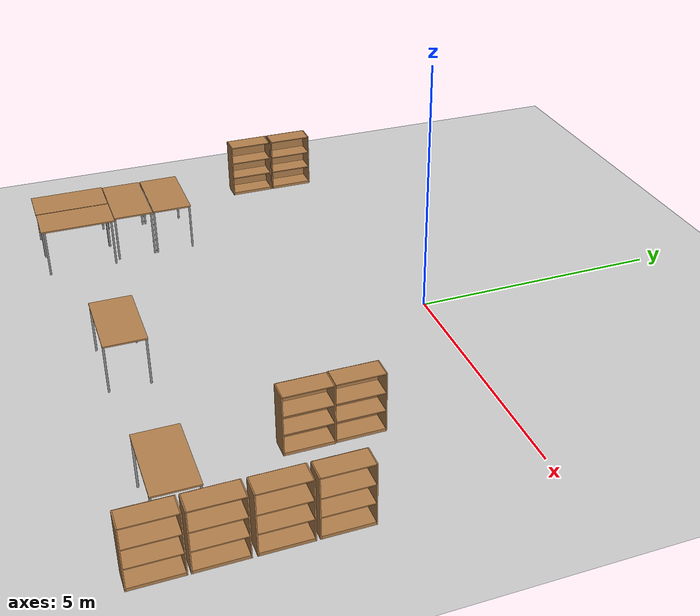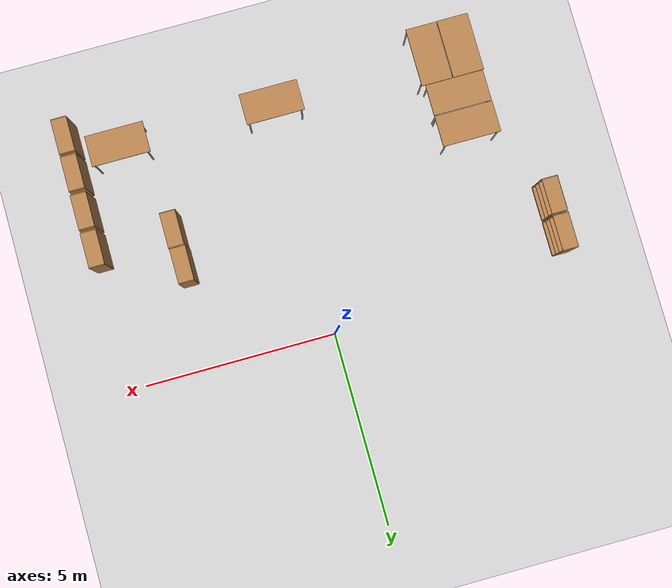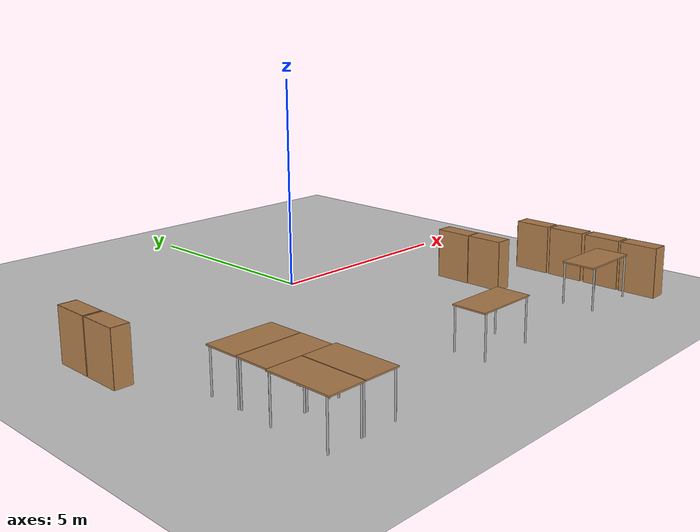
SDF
<sdf version="1.4">
 <world name="office">
  <model name="ground_plane">
   <static>1</static>
   <link name="link">
    <collision name="collision">
     <geometry><plane><normal>0 0 1</normal><size>100 100</size></plane></geometry>
     <surface><friction><ode><mu>100</mu><mu2>50</mu2></ode></friction></surface>
    </collision>
    <visual name="visual">
     <cast_shadows>0</cast_shadows>
     <geometry><plane><normal>0 0 1</normal><size>100 100</size></plane></geometry>
     <material>
      <script><uri>file://media/materials/scripts/gazebo.material</uri><name>Gazebo/Grey</name></script>
     </material>
    </visual>
    <velocity_decay><linear>0</linear><angular>0</angular></velocity_decay>
   </link>
  </model>
  <model name="bookshelf">
   <static>1</static>
   <link name="link">
    <inertial><mass>1</mass></inertial>
    <collision name="back">
     <pose>0 0.005 0.6 0 -0 0</pose>
     <geometry><box><size>0.9 0.01 1.2</size></box></geometry>
    </collision>
    <visual name="visual1">
     <pose>0 0.005 0.6 0 -0 0</pose>
     <geometry><box><size>0.9 0.01 1.2</size></box></geometry>
     <material>
      <script><uri>file://media/materials/scripts/gazebo.material</uri><name>Gazebo/Wood</name></script>
     </material>
    </visual>
    <collision name="left_side">
     <pose>0.45 -0.195 0.6 0 -0 0</pose>
     <geometry><box><size>0.02 0.4 1.2</size></box></geometry>
    </collision>
    <visual name="visual2">
     <pose>0.45 -0.195 0.6 0 -0 0</pose>
     <geometry><box><size>0.02 0.4 1.2</size></box></geometry>
     <material>
      <script><uri>file://media/materials/scripts/gazebo.material</uri><name>Gazebo/Wood</name></script>
     </material>
    </visual>
    <collision name="right_side">
     <pose>-0.45 -0.195 0.6 0 -0 0</pose>
     <geometry><box><size>0.02 0.4 1.2</size></box></geometry>
    </collision>
    <visual name="visual3">
     <pose>-0.45 -0.195 0.6 0 -0 0</pose>
     <geometry><box><size>0.02 0.4 1.2</size></box></geometry>
     <material>
      <script><uri>file://media/materials/scripts/gazebo.material</uri><name>Gazebo/Wood</name></script>
     </material>
    </visual>
    <collision name="bottom">
     <pose>0 -0.195 0.03 0 -0 0</pose>
     <geometry><box><size>0.88 0.4 0.06</size></box></geometry>
    </collision>
    <visual name="visual4">
     <pose>0 -0.195 0.03 0 -0 0</pose>
     <geometry><box><size>0.88 0.4 0.06</size></box></geometry>
     <material>
      <script><uri>file://media/materials/scripts/gazebo.material</uri><name>Gazebo/Wood</name></script>
     </material>
    </visual>
    <collision name="top">
     <pose>0 -0.195 1.19 0 -0 0</pose>
     <geometry><box><size>0.88 0.4 0.02</size></box></geometry>
    </collision>
    <visual name="visual5">
     <pose>0 -0.195 1.19 0 -0 0</pose>
     <geometry><box><size>0.88 0.4 0.02</size></box></geometry>
     <material>
      <script><uri>file://media/materials/scripts/gazebo.material</uri><name>Gazebo/Wood</name></script>
     </material>
    </visual>
    <collision name="low_shelf">
     <pose>0 -0.195 0.43 0 -0 0</pose>
     <geometry><box><size>0.88 0.4 0.02</size></box></geometry>
    </collision>
    <visual name="visual6">
     <pose>0 -0.195 0.43 0 -0 0</pose>
     <geometry><box><size>0.88 0.4 0.02</size></box></geometry>
     <material>
      <script><uri>file://media/materials/scripts/gazebo.material</uri><name>Gazebo/Wood</name></script>
     </material>
    </visual>
    <collision name="high_shelf">
     <pose>0 -0.195 0.8 0 -0 0</pose>
     <geometry><box><size>0.88 0.4 0.02</size></box></geometry>
    </collision>
    <visual name="visual7">
     <pose>0 -0.195 0.8 0 -0 0</pose>
     <geometry><box><size>0.88 0.4 0.02</size></box></geometry>
     <material>
      <script><uri>file://media/materials/scripts/gazebo.material</uri><name>Gazebo/Wood</name></script>
     </material>
    </visual>
    <velocity_decay><linear>0</linear><angular>0</angular></velocity_decay>
   </link>
   <pose>-6.31442 -0.893722 0 0 -0 1.5708</pose>
  </model>
  <model name="bookshelf_0">
   <static>1</static>
   <link name="link">
    <inertial><mass>1</mass></inertial>
    <collision name="back">
     <pose>0 0.005 0.6 0 -0 0</pose>
     <geometry><box><size>0.9 0.01 1.2</size></box></geometry>
    </collision>
    <visual name="visual1">
     <pose>0 0.005 0.6 0 -0 0</pose>
     <geometry><box><size>0.9 0.01 1.2</size></box></geometry>
     <material>
      <script><uri>file://media/materials/scripts/gazebo.material</uri><name>Gazebo/Wood</name></script>
     </material>
    </visual>
    <collision name="left_side">
     <pose>0.45 -0.195 0.6 0 -0 0</pose>
     <geometry><box><size>0.02 0.4 1.2</size></box></geometry>
    </collision>
    <visual name="visual2">
     <pose>0.45 -0.195 0.6 0 -0 0</pose>
     <geometry><box><size>0.02 0.4 1.2</size></box></geometry>
     <material>
      <script><uri>file://media/materials/scripts/gazebo.material</uri><name>Gazebo/Wood</name></script>
     </material>
    </visual>
    <collision name="right_side">
     <pose>-0.45 -0.195 0.6 0 -0 0</pose>
     <geometry><box><size>0.02 0.4 1.2</size></box></geometry>
    </collision>
    <visual name="visual3">
     <pose>-0.45 -0.195 0.6 0 -0 0</pose>
     <geometry><box><size>0.02 0.4 1.2</size></box></geometry>
     <material>
      <script><uri>file://media/materials/scripts/gazebo.material</uri><name>Gazebo/Wood</name></script>
     </material>
    </visual>
    <collision name="bottom">
     <pose>0 -0.195 0.03 0 -0 0</pose>
     <geometry><box><size>0.88 0.4 0.06</size></box></geometry>
    </collision>
    <visual name="visual4">
     <pose>0 -0.195 0.03 0 -0 0</pose>
     <geometry><box><size>0.88 0.4 0.06</size></box></geometry>
     <material>
      <script><uri>file://media/materials/scripts/gazebo.material</uri><name>Gazebo/Wood</name></script>
     </material>
    </visual>
    <collision name="top">
     <pose>0 -0.195 1.19 0 -0 0</pose>
     <geometry><box><size>0.88 0.4 0.02</size></box></geometry>
    </collision>
    <visual name="visual5">
     <pose>0 -0.195 1.19 0 -0 0</pose>
     <geometry><box><size>0.88 0.4 0.02</size></box></geometry>
     <material>
      <script><uri>file://media/materials/scripts/gazebo.material</uri><name>Gazebo/Wood</name></script>
     </material>
    </visual>
    <collision name="low_shelf">
     <pose>0 -0.195 0.43 0 -0 0</pose>
     <geometry><box><size>0.88 0.4 0.02</size></box></geometry>
    </collision>
    <visual name="visual6">
     <pose>0 -0.195 0.43 0 -0 0</pose>
     <geometry><box><size>0.88 0.4 0.02</size></box></geometry>
     <material>
      <script><uri>file://media/materials/scripts/gazebo.material</uri><name>Gazebo/Wood</name></script>
     </material>
    </visual>
    <collision name="high_shelf">
     <pose>0 -0.195 0.8 0 -0 0</pose>
     <geometry><box><size>0.88 0.4 0.02</size></box></geometry>
    </collision>
    <visual name="visual7">
     <pose>0 -0.195 0.8 0 -0 0</pose>
     <geometry><box><size>0.88 0.4 0.02</size></box></geometry>
     <material>
      <script><uri>file://media/materials/scripts/gazebo.material</uri><name>Gazebo/Wood</name></script>
     </material>
    </visual>
    <velocity_decay><linear>0</linear><angular>0</angular></velocity_decay>
   </link>
   <pose>-6.31523 -1.83923 0 0 -0 1.5708</pose>
  </model>
  <model name="bookshelf_3">
   <static>1</static>
   <link name="link">
    <inertial><mass>1</mass></inertial>
    <collision name="back">
     <pose>0 0.005 0.6 0 -0 0</pose>
     <geometry><box><size>0.9 0.01 1.2</size></box></geometry>
    </collision>
    <visual name="visual1">
     <pose>0 0.005 0.6 0 -0 0</pose>
     <geometry><box><size>0.9 0.01 1.2</size></box></geometry>
     <material>
      <script><uri>file://media/materials/scripts/gazebo.material</uri><name>Gazebo/Wood</name></script>
     </material>
    </visual>
    <collision name="left_side">
     <pose>0.45 -0.195 0.6 0 -0 0</pose>
     <geometry><box><size>0.02 0.4 1.2</size></box></geometry>
    </collision>
    <visual name="visual2">
     <pose>0.45 -0.195 0.6 0 -0 0</pose>
     <geometry><box><size>0.02 0.4 1.2</size></box></geometry>
     <material>
      <script><uri>file://media/materials/scripts/gazebo.material</uri><name>Gazebo/Wood</name></script>
     </material>
    </visual>
    <collision name="right_side">
     <pose>-0.45 -0.195 0.6 0 -0 0</pose>
     <geometry><box><size>0.02 0.4 1.2</size></box></geometry>
    </collision>
    <visual name="visual3">
     <pose>-0.45 -0.195 0.6 0 -0 0</pose>
     <geometry><box><size>0.02 0.4 1.2</size></box></geometry>
     <material>
      <script><uri>file://media/materials/scripts/gazebo.material</uri><name>Gazebo/Wood</name></script>
     </material>
    </visual>
    <collision name="bottom">
     <pose>0 -0.195 0.03 0 -0 0</pose>
     <geometry><box><size>0.88 0.4 0.06</size></box></geometry>
    </collision>
    <visual name="visual4">
     <pose>0 -0.195 0.03 0 -0 0</pose>
     <geometry><box><size>0.88 0.4 0.06</size></box></geometry>
     <material>
      <script><uri>file://media/materials/scripts/gazebo.material</uri><name>Gazebo/Wood</name></script>
     </material>
    </visual>
    <collision name="top">
     <pose>0 -0.195 1.19 0 -0 0</pose>
     <geometry><box><size>0.88 0.4 0.02</size></box></geometry>
    </collision>
    <visual name="visual5">
     <pose>0 -0.195 1.19 0 -0 0</pose>
     <geometry><box><size>0.88 0.4 0.02</size></box></geometry>
     <material>
      <script><uri>file://media/materials/scripts/gazebo.material</uri><name>Gazebo/Wood</name></script>
     </material>
    </visual>
    <collision name="low_shelf">
     <pose>0 -0.195 0.43 0 -0 0</pose>
     <geometry><box><size>0.88 0.4 0.02</size></box></geometry>
    </collision>
    <visual name="visual6">
     <pose>0 -0.195 0.43 0 -0 0</pose>
     <geometry><box><size>0.88 0.4 0.02</size></box></geometry>
     <material>
      <script><uri>file://media/materials/scripts/gazebo.material</uri><name>Gazebo/Wood</name></script>
     </material>
    </visual>
    <collision name="high_shelf">
     <pose>0 -0.195 0.8 0 -0 0</pose>
     <geometry><box><size>0.88 0.4 0.02</size></box></geometry>
    </collision>
    <visual name="visual7">
     <pose>0 -0.195 0.8 0 -0 0</pose>
     <geometry><box><size>0.88 0.4 0.02</size></box></geometry>
     <material>
      <script><uri>file://media/materials/scripts/gazebo.material</uri><name>Gazebo/Wood</name></script>
     </material>
    </visual>
    <velocity_decay><linear>0</linear><angular>0</angular></velocity_decay>
   </link>
   <pose>3.02832 -3.53636 0 0 -0 1.5708</pose>
  </model>
  <model name="bookshelf_4">
   <static>1</static>
   <link name="link">
    <inertial><mass>1</mass></inertial>
    <collision name="back">
     <pose>0 0.005 0.6 0 -0 0</pose>
     <geometry><box><size>0.9 0.01 1.2</size></box></geometry>
    </collision>
    <visual name="visual1">
     <pose>0 0.005 0.6 0 -0 0</pose>
     <geometry><box><size>0.9 0.01 1.2</size></box></geometry>
     <material>
      <script><uri>file://media/materials/scripts/gazebo.material</uri><name>Gazebo/Wood</name></script>
     </material>
    </visual>
    <collision name="left_side">
     <pose>0.45 -0.195 0.6 0 -0 0</pose>
     <geometry><box><size>0.02 0.4 1.2</size></box></geometry>
    </collision>
    <visual name="visual2">
     <pose>0.45 -0.195 0.6 0 -0 0</pose>
     <geometry><box><size>0.02 0.4 1.2</size></box></geometry>
     <material>
      <script><uri>file://media/materials/scripts/gazebo.material</uri><name>Gazebo/Wood</name></script>
     </material>
    </visual>
    <collision name="right_side">
     <pose>-0.45 -0.195 0.6 0 -0 0</pose>
     <geometry><box><size>0.02 0.4 1.2</size></box></geometry>
    </collision>
    <visual name="visual3">
     <pose>-0.45 -0.195 0.6 0 -0 0</pose>
     <geometry><box><size>0.02 0.4 1.2</size></box></geometry>
     <material>
      <script><uri>file://media/materials/scripts/gazebo.material</uri><name>Gazebo/Wood</name></script>
     </material>
    </visual>
    <collision name="bottom">
     <pose>0 -0.195 0.03 0 -0 0</pose>
     <geometry><box><size>0.88 0.4 0.06</size></box></geometry>
    </collision>
    <visual name="visual4">
     <pose>0 -0.195 0.03 0 -0 0</pose>
     <geometry><box><size>0.88 0.4 0.06</size></box></geometry>
     <material>
      <script><uri>file://media/materials/scripts/gazebo.material</uri><name>Gazebo/Wood</name></script>
     </material>
    </visual>
    <collision name="top">
     <pose>0 -0.195 1.19 0 -0 0</pose>
     <geometry><box><size>0.88 0.4 0.02</size></box></geometry>
    </collision>
    <visual name="visual5">
     <pose>0 -0.195 1.19 0 -0 0</pose>
     <geometry><box><size>0.88 0.4 0.02</size></box></geometry>
     <material>
      <script><uri>file://media/materials/scripts/gazebo.material</uri><name>Gazebo/Wood</name></script>
     </material>
    </visual>
    <collision name="low_shelf">
     <pose>0 -0.195 0.43 0 -0 0</pose>
     <geometry><box><size>0.88 0.4 0.02</size></box></geometry>
    </collision>
    <visual name="visual6">
     <pose>0 -0.195 0.43 0 -0 0</pose>
     <geometry><box><size>0.88 0.4 0.02</size></box></geometry>
     <material>
      <script><uri>file://media/materials/scripts/gazebo.material</uri><name>Gazebo/Wood</name></script>
     </material>
    </visual>
    <collision name="high_shelf">
     <pose>0 -0.195 0.8 0 -0 0</pose>
     <geometry><box><size>0.88 0.4 0.02</size></box></geometry>
    </collision>
    <visual name="visual7">
     <pose>0 -0.195 0.8 0 -0 0</pose>
     <geometry><box><size>0.88 0.4 0.02</size></box></geometry>
     <material>
      <script><uri>file://media/materials/scripts/gazebo.material</uri><name>Gazebo/Wood</name></script>
     </material>
    </visual>
    <velocity_decay><linear>0</linear><angular>0</angular></velocity_decay>
   </link>
   <pose>3.01417 -2.62352 0 0 -0 1.5708</pose>
  </model>
  <model name="bookshelf_15">
   <static>1</static>
   <link name="link">
    <inertial><mass>1</mass></inertial>
    <collision name="back">
     <pose>0 0.005 0.6 0 -0 0</pose>
     <geometry><box><size>0.9 0.01 1.2</size></box></geometry>
    </collision>
    <visual name="visual1">
     <pose>0 0.005 0.6 0 -0 0</pose>
     <geometry><box><size>0.9 0.01 1.2</size></box></geometry>
     <material>
      <script><uri>file://media/materials/scripts/gazebo.material</uri><name>Gazebo/Wood</name></script>
     </material>
    </visual>
    <collision name="left_side">
     <pose>0.45 -0.195 0.6 0 -0 0</pose>
     <geometry><box><size>0.02 0.4 1.2</size></box></geometry>
    </collision>
    <visual name="visual2">
     <pose>0.45 -0.195 0.6 0 -0 0</pose>
     <geometry><box><size>0.02 0.4 1.2</size></box></geometry>
     <material>
      <script><uri>file://media/materials/scripts/gazebo.material</uri><name>Gazebo/Wood</name></script>
     </material>
    </visual>
    <collision name="right_side">
     <pose>-0.45 -0.195 0.6 0 -0 0</pose>
     <geometry><box><size>0.02 0.4 1.2</size></box></geometry>
    </collision>
    <visual name="visual3">
     <pose>-0.45 -0.195 0.6 0 -0 0</pose>
     <geometry><box><size>0.02 0.4 1.2</size></box></geometry>
     <material>
      <script><uri>file://media/materials/scripts/gazebo.material</uri><name>Gazebo/Wood</name></script>
     </material>
    </visual>
    <collision name="bottom">
     <pose>0 -0.195 0.03 0 -0 0</pose>
     <geometry><box><size>0.88 0.4 0.06</size></box></geometry>
    </collision>
    <visual name="visual4">
     <pose>0 -0.195 0.03 0 -0 0</pose>
     <geometry><box><size>0.88 0.4 0.06</size></box></geometry>
     <material>
      <script><uri>file://media/materials/scripts/gazebo.material</uri><name>Gazebo/Wood</name></script>
     </material>
    </visual>
    <collision name="top">
     <pose>0 -0.195 1.19 0 -0 0</pose>
     <geometry><box><size>0.88 0.4 0.02</size></box></geometry>
    </collision>
    <visual name="visual5">
     <pose>0 -0.195 1.19 0 -0 0</pose>
     <geometry><box><size>0.88 0.4 0.02</size></box></geometry>
     <material>
      <script><uri>file://media/materials/scripts/gazebo.material</uri><name>Gazebo/Wood</name></script>
     </material>
    </visual>
    <collision name="low_shelf">
     <pose>0 -0.195 0.43 0 -0 0</pose>
     <geometry><box><size>0.88 0.4 0.02</size></box></geometry>
    </collision>
    <visual name="visual6">
     <pose>0 -0.195 0.43 0 -0 0</pose>
     <geometry><box><size>0.88 0.4 0.02</size></box></geometry>
     <material>
      <script><uri>file://media/materials/scripts/gazebo.material</uri><name>Gazebo/Wood</name></script>
     </material>
    </visual>
    <collision name="high_shelf">
     <pose>0 -0.195 0.8 0 -0 0</pose>
     <geometry><box><size>0.88 0.4 0.02</size></box></geometry>
    </collision>
    <visual name="visual7">
     <pose>0 -0.195 0.8 0 -0 0</pose>
     <geometry><box><size>0.88 0.4 0.02</size></box></geometry>
     <material>
      <script><uri>file://media/materials/scripts/gazebo.material</uri><name>Gazebo/Wood</name></script>
     </material>
    </visual>
    <velocity_decay><linear>0</linear><angular>0</angular></velocity_decay>
   </link>
   <pose>5.03641 -3.58343 0 0 -0 1.5708</pose>
  </model>
  <model name="bookshelf_16">
   <static>1</static>
   <link name="link">
    <inertial><mass>1</mass></inertial>
    <collision name="back">
     <pose>0 0.005 0.6 0 -0 0</pose>
     <geometry><box><size>0.9 0.01 1.2</size></box></geometry>
    </collision>
    <visual name="visual1">
     <pose>0 0.005 0.6 0 -0 0</pose>
     <geometry><box><size>0.9 0.01 1.2</size></box></geometry>
     <material>
      <script><uri>file://media/materials/scripts/gazebo.material</uri><name>Gazebo/Wood</name></script>
     </material>
    </visual>
    <collision name="left_side">
     <pose>0.45 -0.195 0.6 0 -0 0</pose>
     <geometry><box><size>0.02 0.4 1.2</size></box></geometry>
    </collision>
    <visual name="visual2">
     <pose>0.45 -0.195 0.6 0 -0 0</pose>
     <geometry><box><size>0.02 0.4 1.2</size></box></geometry>
     <material>
      <script><uri>file://media/materials/scripts/gazebo.material</uri><name>Gazebo/Wood</name></script>
     </material>
    </visual>
    <collision name="right_side">
     <pose>-0.45 -0.195 0.6 0 -0 0</pose>
     <geometry><box><size>0.02 0.4 1.2</size></box></geometry>
    </collision>
    <visual name="visual3">
     <pose>-0.45 -0.195 0.6 0 -0 0</pose>
     <geometry><box><size>0.02 0.4 1.2</size></box></geometry>
     <material>
      <script><uri>file://media/materials/scripts/gazebo.material</uri><name>Gazebo/Wood</name></script>
     </material>
    </visual>
    <collision name="bottom">
     <pose>0 -0.195 0.03 0 -0 0</pose>
     <geometry><box><size>0.88 0.4 0.06</size></box></geometry>
    </collision>
    <visual name="visual4">
     <pose>0 -0.195 0.03 0 -0 0</pose>
     <geometry><box><size>0.88 0.4 0.06</size></box></geometry>
     <material>
      <script><uri>file://media/materials/scripts/gazebo.material</uri><name>Gazebo/Wood</name></script>
     </material>
    </visual>
    <collision name="top">
     <pose>0 -0.195 1.19 0 -0 0</pose>
     <geometry><box><size>0.88 0.4 0.02</size></box></geometry>
    </collision>
    <visual name="visual5">
     <pose>0 -0.195 1.19 0 -0 0</pose>
     <geometry><box><size>0.88 0.4 0.02</size></box></geometry>
     <material>
      <script><uri>file://media/materials/scripts/gazebo.material</uri><name>Gazebo/Wood</name></script>
     </material>
    </visual>
    <collision name="low_shelf">
     <pose>0 -0.195 0.43 0 -0 0</pose>
     <geometry><box><size>0.88 0.4 0.02</size></box></geometry>
    </collision>
    <visual name="visual6">
     <pose>0 -0.195 0.43 0 -0 0</pose>
     <geometry><box><size>0.88 0.4 0.02</size></box></geometry>
     <material>
      <script><uri>file://media/materials/scripts/gazebo.material</uri><name>Gazebo/Wood</name></script>
     </material>
    </visual>
    <collision name="high_shelf">
     <pose>0 -0.195 0.8 0 -0 0</pose>
     <geometry><box><size>0.88 0.4 0.02</size></box></geometry>
    </collision>
    <visual name="visual7">
     <pose>0 -0.195 0.8 0 -0 0</pose>
     <geometry><box><size>0.88 0.4 0.02</size></box></geometry>
     <material>
      <script><uri>file://media/materials/scripts/gazebo.material</uri><name>Gazebo/Wood</name></script>
     </material>
    </visual>
    <velocity_decay><linear>0</linear><angular>0</angular></velocity_decay>
   </link>
   <pose>5.04001 -4.56031 0 0 -0 1.5708</pose>
  </model>
  <model name="bookshelf_17">
   <static>1</static>
   <link name="link">
    <inertial><mass>1</mass></inertial>
    <collision name="back">
     <pose>0 0.005 0.6 0 -0 0</pose>
     <geometry><box><size>0.9 0.01 1.2</size></box></geometry>
    </collision>
    <visual name="visual1">
     <pose>0 0.005 0.6 0 -0 0</pose>
     <geometry><box><size>0.9 0.01 1.2</size></box></geometry>
     <material>
      <script><uri>file://media/materials/scripts/gazebo.material</uri><name>Gazebo/Wood</name></script>
     </material>
    </visual>
    <collision name="left_side">
     <pose>0.45 -0.195 0.6 0 -0 0</pose>
     <geometry><box><size>0.02 0.4 1.2</size></box></geometry>
    </collision>
    <visual name="visual2">
     <pose>0.45 -0.195 0.6 0 -0 0</pose>
     <geometry><box><size>0.02 0.4 1.2</size></box></geometry>
     <material>
      <script><uri>file://media/materials/scripts/gazebo.material</uri><name>Gazebo/Wood</name></script>
     </material>
    </visual>
    <collision name="right_side">
     <pose>-0.45 -0.195 0.6 0 -0 0</pose>
     <geometry><box><size>0.02 0.4 1.2</size></box></geometry>
    </collision>
    <visual name="visual3">
     <pose>-0.45 -0.195 0.6 0 -0 0</pose>
     <geometry><box><size>0.02 0.4 1.2</size></box></geometry>
     <material>
      <script><uri>file://media/materials/scripts/gazebo.material</uri><name>Gazebo/Wood</name></script>
     </material>
    </visual>
    <collision name="bottom">
     <pose>0 -0.195 0.03 0 -0 0</pose>
     <geometry><box><size>0.88 0.4 0.06</size></box></geometry>
    </collision>
    <visual name="visual4">
     <pose>0 -0.195 0.03 0 -0 0</pose>
     <geometry><box><size>0.88 0.4 0.06</size></box></geometry>
     <material>
      <script><uri>file://media/materials/scripts/gazebo.material</uri><name>Gazebo/Wood</name></script>
     </material>
    </visual>
    <collision name="top">
     <pose>0 -0.195 1.19 0 -0 0</pose>
     <geometry><box><size>0.88 0.4 0.02</size></box></geometry>
    </collision>
    <visual name="visual5">
     <pose>0 -0.195 1.19 0 -0 0</pose>
     <geometry><box><size>0.88 0.4 0.02</size></box></geometry>
     <material>
      <script><uri>file://media/materials/scripts/gazebo.material</uri><name>Gazebo/Wood</name></script>
     </material>
    </visual>
    <collision name="low_shelf">
     <pose>0 -0.195 0.43 0 -0 0</pose>
     <geometry><box><size>0.88 0.4 0.02</size></box></geometry>
    </collision>
    <visual name="visual6">
     <pose>0 -0.195 0.43 0 -0 0</pose>
     <geometry><box><size>0.88 0.4 0.02</size></box></geometry>
     <material>
      <script><uri>file://media/materials/scripts/gazebo.material</uri><name>Gazebo/Wood</name></script>
     </material>
    </visual>
    <collision name="high_shelf">
     <pose>0 -0.195 0.8 0 -0 0</pose>
     <geometry><box><size>0.88 0.4 0.02</size></box></geometry>
    </collision>
    <visual name="visual7">
     <pose>0 -0.195 0.8 0 -0 0</pose>
     <geometry><box><size>0.88 0.4 0.02</size></box></geometry>
     <material>
      <script><uri>file://media/materials/scripts/gazebo.material</uri><name>Gazebo/Wood</name></script>
     </material>
    </visual>
    <velocity_decay><linear>0</linear><angular>0</angular></velocity_decay>
   </link>
   <pose>5.03842 -5.55621 0 0 -0 1.5708</pose>
  </model>
  <model name="bookshelf_18">
   <static>1</static>
   <link name="link">
    <inertial><mass>1</mass></inertial>
    <collision name="back">
     <pose>0 0.005 0.6 0 -0 0</pose>
     <geometry><box><size>0.9 0.01 1.2</size></box></geometry>
    </collision>
    <visual name="visual1">
     <pose>0 0.005 0.6 0 -0 0</pose>
     <geometry><box><size>0.9 0.01 1.2</size></box></geometry>
     <material>
      <script><uri>file://media/materials/scripts/gazebo.material</uri><name>Gazebo/Wood</name></script>
     </material>
    </visual>
    <collision name="left_side">
     <pose>0.45 -0.195 0.6 0 -0 0</pose>
     <geometry><box><size>0.02 0.4 1.2</size></box></geometry>
    </collision>
    <visual name="visual2">
     <pose>0.45 -0.195 0.6 0 -0 0</pose>
     <geometry><box><size>0.02 0.4 1.2</size></box></geometry>
     <material>
      <script><uri>file://media/materials/scripts/gazebo.material</uri><name>Gazebo/Wood</name></script>
     </material>
    </visual>
    <collision name="right_side">
     <pose>-0.45 -0.195 0.6 0 -0 0</pose>
     <geometry><box><size>0.02 0.4 1.2</size></box></geometry>
    </collision>
    <visual name="visual3">
     <pose>-0.45 -0.195 0.6 0 -0 0</pose>
     <geometry><box><size>0.02 0.4 1.2</size></box></geometry>
     <material>
      <script><uri>file://media/materials/scripts/gazebo.material</uri><name>Gazebo/Wood</name></script>
     </material>
    </visual>
    <collision name="bottom">
     <pose>0 -0.195 0.03 0 -0 0</pose>
     <geometry><box><size>0.88 0.4 0.06</size></box></geometry>
    </collision>
    <visual name="visual4">
     <pose>0 -0.195 0.03 0 -0 0</pose>
     <geometry><box><size>0.88 0.4 0.06</size></box></geometry>
     <material>
      <script><uri>file://media/materials/scripts/gazebo.material</uri><name>Gazebo/Wood</name></script>
     </material>
    </visual>
    <collision name="top">
     <pose>0 -0.195 1.19 0 -0 0</pose>
     <geometry><box><size>0.88 0.4 0.02</size></box></geometry>
    </collision>
    <visual name="visual5">
     <pose>0 -0.195 1.19 0 -0 0</pose>
     <geometry><box><size>0.88 0.4 0.02</size></box></geometry>
     <material>
      <script><uri>file://media/materials/scripts/gazebo.material</uri><name>Gazebo/Wood</name></script>
     </material>
    </visual>
    <collision name="low_shelf">
     <pose>0 -0.195 0.43 0 -0 0</pose>
     <geometry><box><size>0.88 0.4 0.02</size></box></geometry>
    </collision>
    <visual name="visual6">
     <pose>0 -0.195 0.43 0 -0 0</pose>
     <geometry><box><size>0.88 0.4 0.02</size></box></geometry>
     <material>
      <script><uri>file://media/materials/scripts/gazebo.material</uri><name>Gazebo/Wood</name></script>
     </material>
    </visual>
    <collision name="high_shelf">
     <pose>0 -0.195 0.8 0 -0 0</pose>
     <geometry><box><size>0.88 0.4 0.02</size></box></geometry>
    </collision>
    <visual name="visual7">
     <pose>0 -0.195 0.8 0 -0 0</pose>
     <geometry><box><size>0.88 0.4 0.02</size></box></geometry>
     <material>
      <script><uri>file://media/materials/scripts/gazebo.material</uri><name>Gazebo/Wood</name></script>
     </material>
    </visual>
    <velocity_decay><linear>0</linear><angular>0</angular></velocity_decay>
   </link>
   <pose>5.03802 -6.52345 0 0 -0 1.5708</pose>
  </model>
  <model name="table_6">
   <static>1</static>
   <link name="link">
    <collision name="surface">
     <pose>0 0 1 0 -0 0</pose>
     <geometry><box><size>1.5 0.8 0.03</size></box></geometry>
    </collision>
    <visual name="visual1">
     <pose>0 0 1 0 -0 0</pose>
     <geometry><box><size>1.5 0.8 0.03</size></box></geometry>
     <material>
      <script><uri>file://media/materials/scripts/gazebo.material</uri><name>Gazebo/Wood</name></script>
     </material>
    </visual>
    <collision name="front_left_leg">
     <pose>0.68 0.38 0.5 0 -0 0</pose>
     <geometry><cylinder><radius>0.02</radius><length>1</length></cylinder></geometry>
    </collision>
    <visual name="front_left_leg">
     <pose>0.68 0.38 0.5 0 -0 0</pose>
     <geometry><cylinder><radius>0.02</radius><length>1</length></cylinder></geometry>
     <material>
      <script><uri>file://media/materials/scripts/gazebo.material</uri><name>Gazebo/Grey</name></script>
     </material>
    </visual>
    <collision name="front_right_leg">
     <pose>0.68 -0.38 0.5 0 -0 0</pose>
     <geometry><cylinder><radius>0.02</radius><length>1</length></cylinder></geometry>
    </collision>
    <visual name="front_right_leg">
     <pose>0.68 -0.38 0.5 0 -0 0</pose>
     <geometry><cylinder><radius>0.02</radius><length>1</length></cylinder></geometry>
     <material>
      <script><uri>file://media/materials/scripts/gazebo.material</uri><name>Gazebo/Grey</name></script>
     </material>
    </visual>
    <collision name="back_right_leg">
     <pose>-0.68 -0.38 0.5 0 -0 0</pose>
     <geometry><cylinder><radius>0.02</radius><length>1</length></cylinder></geometry>
    </collision>
    <visual name="back_right_leg">
     <pose>-0.68 -0.38 0.5 0 -0 0</pose>
     <geometry><cylinder><radius>0.02</radius><length>1</length></cylinder></geometry>
     <material>
      <script><uri>file://media/materials/scripts/gazebo.material</uri><name>Gazebo/Grey</name></script>
     </material>
    </visual>
    <collision name="back_left_leg">
     <pose>-0.68 0.38 0.5 0 -0 0</pose>
     <geometry><cylinder><radius>0.02</radius><length>1</length></cylinder></geometry>
    </collision>
    <visual name="back_left_leg">
     <pose>-0.68 0.38 0.5 0 -0 0</pose>
     <geometry><cylinder><radius>0.02</radius><length>1</length></cylinder></geometry>
     <material>
      <script><uri>file://media/materials/scripts/gazebo.material</uri><name>Gazebo/Grey</name></script>
     </material>
    </visual>
    <velocity_decay><linear>0</linear><angular>0</angular></velocity_decay>
   </link>
   <pose>-4.14141 -6.13774 0 0 0 -1.5708</pose>
  </model>
  <model name="table_7">
   <static>1</static>
   <link name="link">
    <collision name="surface">
     <pose>0 0 1 0 -0 0</pose>
     <geometry><box><size>1.5 0.8 0.03</size></box></geometry>
    </collision>
    <visual name="visual1">
     <pose>0 0 1 0 -0 0</pose>
     <geometry><box><size>1.5 0.8 0.03</size></box></geometry>
     <material>
      <script><uri>file://media/materials/scripts/gazebo.material</uri><name>Gazebo/Wood</name></script>
     </material>
    </visual>
    <collision name="front_left_leg">
     <pose>0.68 0.38 0.5 0 -0 0</pose>
     <geometry><cylinder><radius>0.02</radius><length>1</length></cylinder></geometry>
    </collision>
    <visual name="front_left_leg">
     <pose>0.68 0.38 0.5 0 -0 0</pose>
     <geometry><cylinder><radius>0.02</radius><length>1</length></cylinder></geometry>
     <material>
      <script><uri>file://media/materials/scripts/gazebo.material</uri><name>Gazebo/Grey</name></script>
     </material>
    </visual>
    <collision name="front_right_leg">
     <pose>0.68 -0.38 0.5 0 -0 0</pose>
     <geometry><cylinder><radius>0.02</radius><length>1</length></cylinder></geometry>
    </collision>
    <visual name="front_right_leg">
     <pose>0.68 -0.38 0.5 0 -0 0</pose>
     <geometry><cylinder><radius>0.02</radius><length>1</length></cylinder></geometry>
     <material>
      <script><uri>file://media/materials/scripts/gazebo.material</uri><name>Gazebo/Grey</name></script>
     </material>
    </visual>
    <collision name="back_right_leg">
     <pose>-0.68 -0.38 0.5 0 -0 0</pose>
     <geometry><cylinder><radius>0.02</radius><length>1</length></cylinder></geometry>
    </collision>
    <visual name="back_right_leg">
     <pose>-0.68 -0.38 0.5 0 -0 0</pose>
     <geometry><cylinder><radius>0.02</radius><length>1</length></cylinder></geometry>
     <material>
      <script><uri>file://media/materials/scripts/gazebo.material</uri><name>Gazebo/Grey</name></script>
     </material>
    </visual>
    <collision name="back_left_leg">
     <pose>-0.68 0.38 0.5 0 -0 0</pose>
     <geometry><cylinder><radius>0.02</radius><length>1</length></cylinder></geometry>
    </collision>
    <visual name="back_left_leg">
     <pose>-0.68 0.38 0.5 0 -0 0</pose>
     <geometry><cylinder><radius>0.02</radius><length>1</length></cylinder></geometry>
     <material>
      <script><uri>file://media/materials/scripts/gazebo.material</uri><name>Gazebo/Grey</name></script>
     </material>
    </visual>
    <velocity_decay><linear>0</linear><angular>0</angular></velocity_decay>
   </link>
   <pose>-4.96215 -6.14322 0 0 0 -1.5708</pose>
  </model>
  <model name="table_8">
   <static>1</static>
   <link name="link">
    <collision name="surface">
     <pose>0 0 1 0 -0 0</pose>
     <geometry><box><size>1.5 0.8 0.03</size></box></geometry>
    </collision>
    <visual name="visual1">
     <pose>0 0 1 0 -0 0</pose>
     <geometry><box><size>1.5 0.8 0.03</size></box></geometry>
     <material>
      <script><uri>file://media/materials/scripts/gazebo.material</uri><name>Gazebo/Wood</name></script>
     </material>
    </visual>
    <collision name="front_left_leg">
     <pose>0.68 0.38 0.5 0 -0 0</pose>
     <geometry><cylinder><radius>0.02</radius><length>1</length></cylinder></geometry>
    </collision>
    <visual name="front_left_leg">
     <pose>0.68 0.38 0.5 0 -0 0</pose>
     <geometry><cylinder><radius>0.02</radius><length>1</length></cylinder></geometry>
     <material>
      <script><uri>file://media/materials/scripts/gazebo.material</uri><name>Gazebo/Grey</name></script>
     </material>
    </visual>
    <collision name="front_right_leg">
     <pose>0.68 -0.38 0.5 0 -0 0</pose>
     <geometry><cylinder><radius>0.02</radius><length>1</length></cylinder></geometry>
    </collision>
    <visual name="front_right_leg">
     <pose>0.68 -0.38 0.5 0 -0 0</pose>
     <geometry><cylinder><radius>0.02</radius><length>1</length></cylinder></geometry>
     <material>
      <script><uri>file://media/materials/scripts/gazebo.material</uri><name>Gazebo/Grey</name></script>
     </material>
    </visual>
    <collision name="back_right_leg">
     <pose>-0.68 -0.38 0.5 0 -0 0</pose>
     <geometry><cylinder><radius>0.02</radius><length>1</length></cylinder></geometry>
    </collision>
    <visual name="back_right_leg">
     <pose>-0.68 -0.38 0.5 0 -0 0</pose>
     <geometry><cylinder><radius>0.02</radius><length>1</length></cylinder></geometry>
     <material>
      <script><uri>file://media/materials/scripts/gazebo.material</uri><name>Gazebo/Grey</name></script>
     </material>
    </visual>
    <collision name="back_left_leg">
     <pose>-0.68 0.38 0.5 0 -0 0</pose>
     <geometry><cylinder><radius>0.02</radius><length>1</length></cylinder></geometry>
    </collision>
    <visual name="back_left_leg">
     <pose>-0.68 0.38 0.5 0 -0 0</pose>
     <geometry><cylinder><radius>0.02</radius><length>1</length></cylinder></geometry>
     <material>
      <script><uri>file://media/materials/scripts/gazebo.material</uri><name>Gazebo/Grey</name></script>
     </material>
    </visual>
    <velocity_decay><linear>0</linear><angular>0</angular></velocity_decay>
   </link>
   <pose>-4.58557 -4.15805 0 0 -0 0</pose>
  </model>
  <model name="table_9">
   <static>1</static>
   <link name="link">
    <collision name="surface">
     <pose>0 0 1 0 -0 0</pose>
     <geometry><box><size>1.5 0.8 0.03</size></box></geometry>
    </collision>
    <visual name="visual1">
     <pose>0 0 1 0 -0 0</pose>
     <geometry><box><size>1.5 0.8 0.03</size></box></geometry>
     <material>
      <script><uri>file://media/materials/scripts/gazebo.material</uri><name>Gazebo/Wood</name></script>
     </material>
    </visual>
    <collision name="front_left_leg">
     <pose>0.68 0.38 0.5 0 -0 0</pose>
     <geometry><cylinder><radius>0.02</radius><length>1</length></cylinder></geometry>
    </collision>
    <visual name="front_left_leg">
     <pose>0.68 0.38 0.5 0 -0 0</pose>
     <geometry><cylinder><radius>0.02</radius><length>1</length></cylinder></geometry>
     <material>
      <script><uri>file://media/materials/scripts/gazebo.material</uri><name>Gazebo/Grey</name></script>
     </material>
    </visual>
    <collision name="front_right_leg">
     <pose>0.68 -0.38 0.5 0 -0 0</pose>
     <geometry><cylinder><radius>0.02</radius><length>1</length></cylinder></geometry>
    </collision>
    <visual name="front_right_leg">
     <pose>0.68 -0.38 0.5 0 -0 0</pose>
     <geometry><cylinder><radius>0.02</radius><length>1</length></cylinder></geometry>
     <material>
      <script><uri>file://media/materials/scripts/gazebo.material</uri><name>Gazebo/Grey</name></script>
     </material>
    </visual>
    <collision name="back_right_leg">
     <pose>-0.68 -0.38 0.5 0 -0 0</pose>
     <geometry><cylinder><radius>0.02</radius><length>1</length></cylinder></geometry>
    </collision>
    <visual name="back_right_leg">
     <pose>-0.68 -0.38 0.5 0 -0 0</pose>
     <geometry><cylinder><radius>0.02</radius><length>1</length></cylinder></geometry>
     <material>
      <script><uri>file://media/materials/scripts/gazebo.material</uri><name>Gazebo/Grey</name></script>
     </material>
    </visual>
    <collision name="back_left_leg">
     <pose>-0.68 0.38 0.5 0 -0 0</pose>
     <geometry><cylinder><radius>0.02</radius><length>1</length></cylinder></geometry>
    </collision>
    <visual name="back_left_leg">
     <pose>-0.68 0.38 0.5 0 -0 0</pose>
     <geometry><cylinder><radius>0.02</radius><length>1</length></cylinder></geometry>
     <material>
      <script><uri>file://media/materials/scripts/gazebo.material</uri><name>Gazebo/Grey</name></script>
     </material>
    </visual>
    <velocity_decay><linear>0</linear><angular>0</angular></velocity_decay>
   </link>
   <pose>-4.57916 -4.98068 0 0 -0 0</pose>
  </model>
  <model name="table_10">
   <static>1</static>
   <link name="link">
    <collision name="surface">
     <pose>0 0 1 0 -0 0</pose>
     <geometry><box><size>1.5 0.8 0.03</size></box></geometry>
    </collision>
    <visual name="visual1">
     <pose>0 0 1 0 -0 0</pose>
     <geometry><box><size>1.5 0.8 0.03</size></box></geometry>
     <material>
      <script><uri>file://media/materials/scripts/gazebo.material</uri><name>Gazebo/Wood</name></script>
     </material>
    </visual>
    <collision name="front_left_leg">
     <pose>0.68 0.38 0.5 0 -0 0</pose>
     <geometry><cylinder><radius>0.02</radius><length>1</length></cylinder></geometry>
    </collision>
    <visual name="front_left_leg">
     <pose>0.68 0.38 0.5 0 -0 0</pose>
     <geometry><cylinder><radius>0.02</radius><length>1</length></cylinder></geometry>
     <material>
      <script><uri>file://media/materials/scripts/gazebo.material</uri><name>Gazebo/Grey</name></script>
     </material>
    </visual>
    <collision name="front_right_leg">
     <pose>0.68 -0.38 0.5 0 -0 0</pose>
     <geometry><cylinder><radius>0.02</radius><length>1</length></cylinder></geometry>
    </collision>
    <visual name="front_right_leg">
     <pose>0.68 -0.38 0.5 0 -0 0</pose>
     <geometry><cylinder><radius>0.02</radius><length>1</length></cylinder></geometry>
     <material>
      <script><uri>file://media/materials/scripts/gazebo.material</uri><name>Gazebo/Grey</name></script>
     </material>
    </visual>
    <collision name="back_right_leg">
     <pose>-0.68 -0.38 0.5 0 -0 0</pose>
     <geometry><cylinder><radius>0.02</radius><length>1</length></cylinder></geometry>
    </collision>
    <visual name="back_right_leg">
     <pose>-0.68 -0.38 0.5 0 -0 0</pose>
     <geometry><cylinder><radius>0.02</radius><length>1</length></cylinder></geometry>
     <material>
      <script><uri>file://media/materials/scripts/gazebo.material</uri><name>Gazebo/Grey</name></script>
     </material>
    </visual>
    <collision name="back_left_leg">
     <pose>-0.68 0.38 0.5 0 -0 0</pose>
     <geometry><cylinder><radius>0.02</radius><length>1</length></cylinder></geometry>
    </collision>
    <visual name="back_left_leg">
     <pose>-0.68 0.38 0.5 0 -0 0</pose>
     <geometry><cylinder><radius>0.02</radius><length>1</length></cylinder></geometry>
     <material>
      <script><uri>file://media/materials/scripts/gazebo.material</uri><name>Gazebo/Grey</name></script>
     </material>
    </visual>
    <velocity_decay><linear>0</linear><angular>0</angular></velocity_decay>
   </link>
   <pose>0 -6 0 0 -0 0</pose>
  </model>
  <model name="table_11">
   <static>1</static>
   <link name="link">
    <collision name="surface">
     <pose>0 0 1 0 -0 0</pose>
     <geometry><box><size>1.5 0.8 0.03</size></box></geometry>
    </collision>
    <visual name="visual1">
     <pose>0 0 1 0 -0 0</pose>
     <geometry><box><size>1.5 0.8 0.03</size></box></geometry>
     <material>
      <script><uri>file://media/materials/scripts/gazebo.material</uri><name>Gazebo/Wood</name></script>
     </material>
    </visual>
    <collision name="front_left_leg">
     <pose>0.68 0.38 0.5 0 -0 0</pose>
     <geometry><cylinder><radius>0.02</radius><length>1</length></cylinder></geometry>
    </collision>
    <visual name="front_left_leg">
     <pose>0.68 0.38 0.5 0 -0 0</pose>
     <geometry><cylinder><radius>0.02</radius><length>1</length></cylinder></geometry>
     <material>
      <script><uri>file://media/materials/scripts/gazebo.material</uri><name>Gazebo/Grey</name></script>
     </material>
    </visual>
    <collision name="front_right_leg">
     <pose>0.68 -0.38 0.5 0 -0 0</pose>
     <geometry><cylinder><radius>0.02</radius><length>1</length></cylinder></geometry>
    </collision>
    <visual name="front_right_leg">
     <pose>0.68 -0.38 0.5 0 -0 0</pose>
     <geometry><cylinder><radius>0.02</radius><length>1</length></cylinder></geometry>
     <material>
      <script><uri>file://media/materials/scripts/gazebo.material</uri><name>Gazebo/Grey</name></script>
     </material>
    </visual>
    <collision name="back_right_leg">
     <pose>-0.68 -0.38 0.5 0 -0 0</pose>
     <geometry><cylinder><radius>0.02</radius><length>1</length></cylinder></geometry>
    </collision>
    <visual name="back_right_leg">
     <pose>-0.68 -0.38 0.5 0 -0 0</pose>
     <geometry><cylinder><radius>0.02</radius><length>1</length></cylinder></geometry>
     <material>
      <script><uri>file://media/materials/scripts/gazebo.material</uri><name>Gazebo/Grey</name></script>
     </material>
    </visual>
    <collision name="back_left_leg">
     <pose>-0.68 0.38 0.5 0 -0 0</pose>
     <geometry><cylinder><radius>0.02</radius><length>1</length></cylinder></geometry>
    </collision>
    <visual name="back_left_leg">
     <pose>-0.68 0.38 0.5 0 -0 0</pose>
     <geometry><cylinder><radius>0.02</radius><length>1</length></cylinder></geometry>
     <material>
      <script><uri>file://media/materials/scripts/gazebo.material</uri><name>Gazebo/Grey</name></script>
     </material>
    </visual>
    <velocity_decay><linear>0</linear><angular>0</angular></velocity_decay>
   </link>
   <pose>4 -6 0 0 -0 0</pose>
  </model>
 </world>
</sdf>
